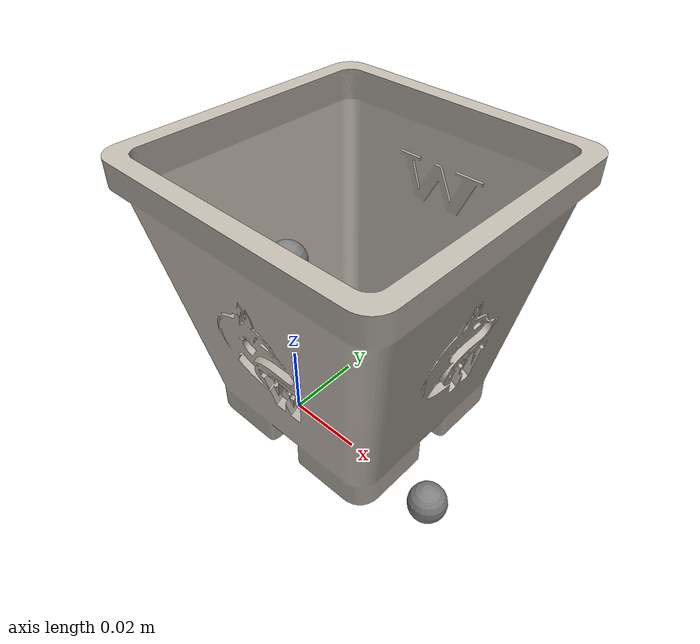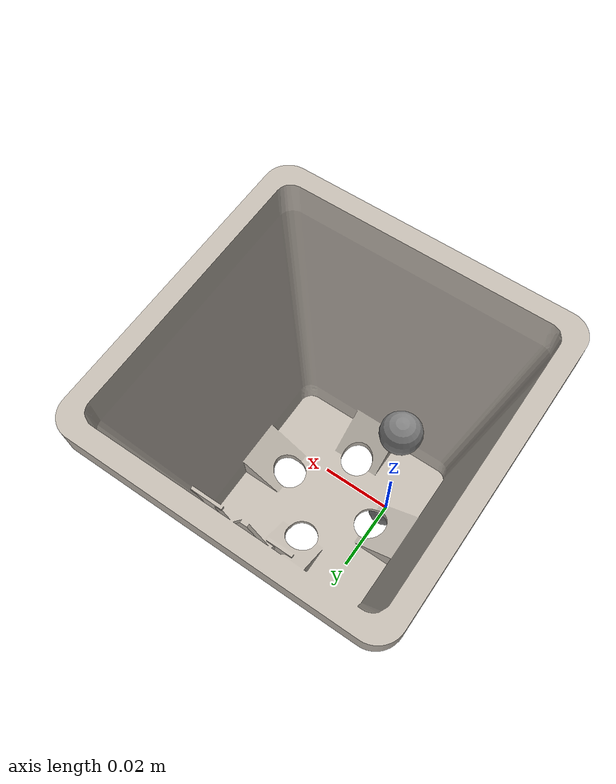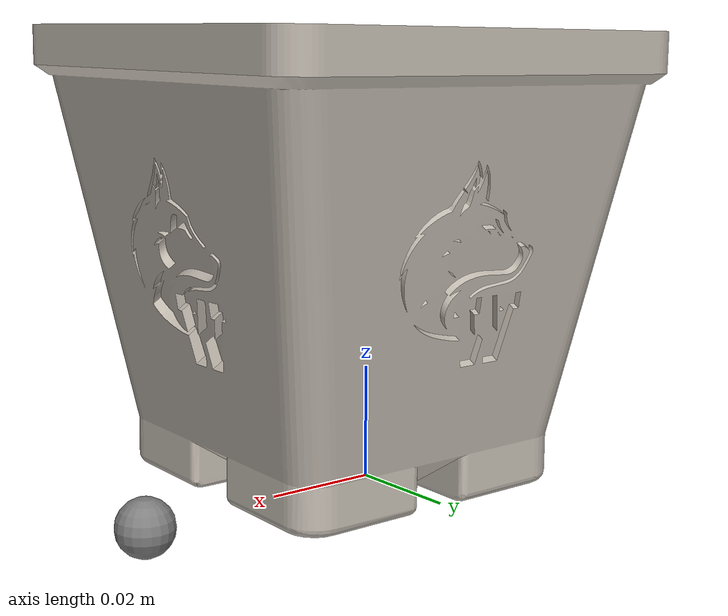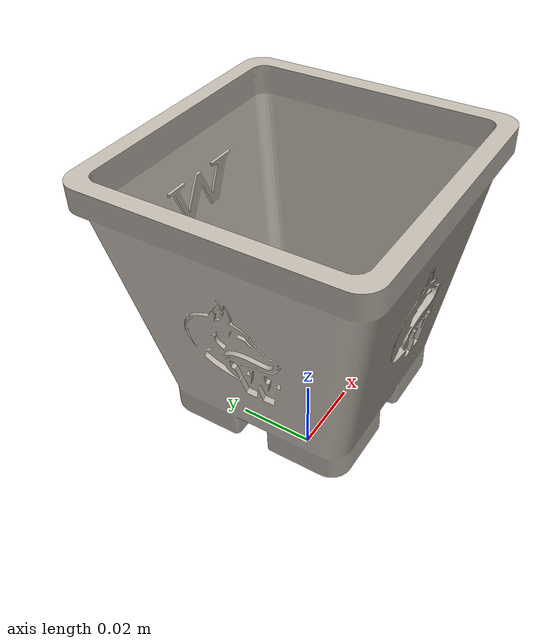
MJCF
<!-- sample of a general object defined in mujoco -->
<mujoco model="pot">
	<asset>
		<mesh file="meshes/pot.stl" name="pot_mesh" scale="0.0005 0.0005 0.0005"/>
		<texture file="../textures/clay.png" name="tex-clay"/>
		<material name="clay" reflectance="0.5" texrepeat="1 1" texture="tex-clay" texuniform="true"/>

	</asset>
	<worldbody>
		<body>
			<body name="collision">
				<geom pos="0 0 0" mesh="pot_mesh" density="1000" friction="0.5" type="mesh" material="clay" group="1"/>
			</body>
			<body name="visual">
				<geom pos="0 0 0" mesh="pot_mesh" type="mesh" material="clay"  conaffinity="0" contype="0" group="1"/>
			</body>
			<site pos="0 0 0" name="bottom_site"/>
			<site pos="0 0 0.05" name="top_site"/>
			<site pos="0.045 0 0" name="horizontal_radius_site"/>
		</body>
	</worldbody>
</mujoco>
